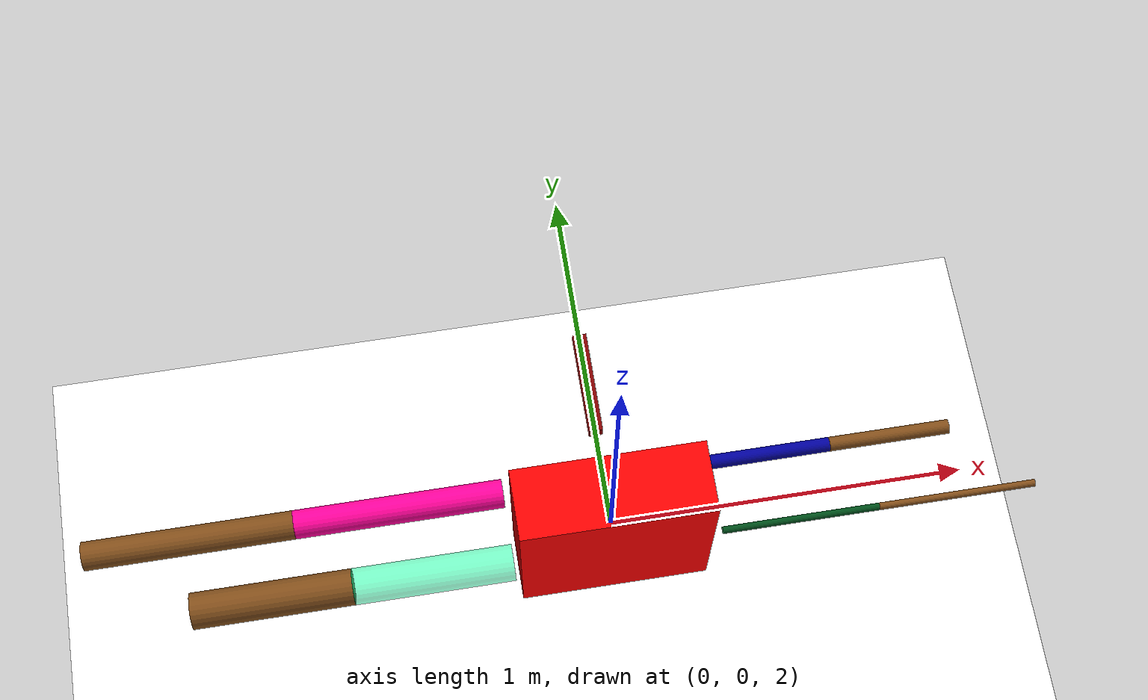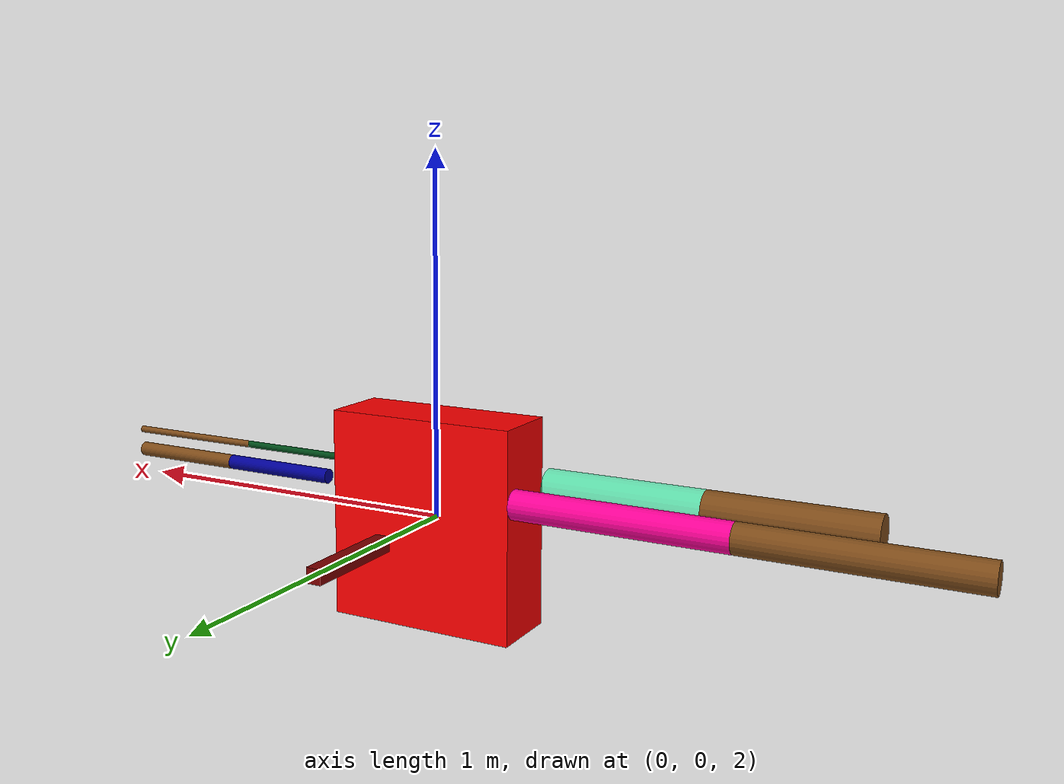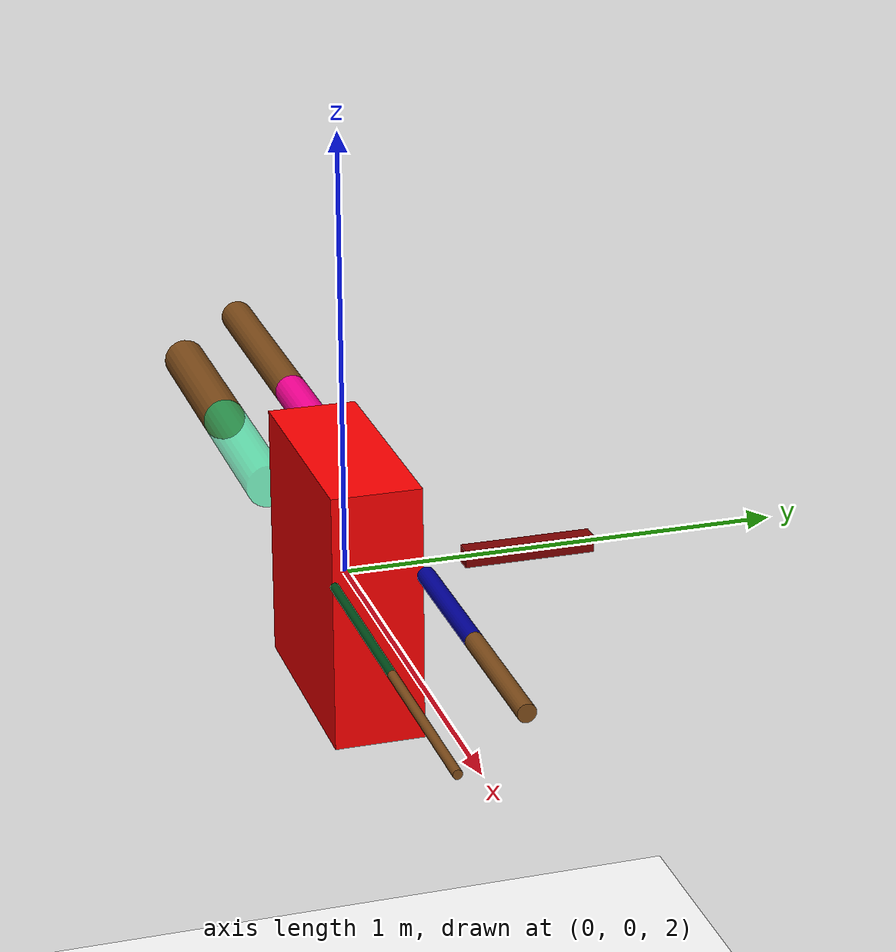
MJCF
<mujoco>
    <option gravity="0 0 -50.81" />
    <worldbody>
        <light diffuse="0.8 0.8 0.8" pos="0 0 8" dir="0 0 -1" />
        <geom type="plane" size="3 3 0.1" rgba="1 1 1 1" />

        <body name="main_body" pos="0 0 2">
            <joint name="main_body" type="free" />
            <geom type="box" size="0.29 0.27 0.1" rgba="1 0 0 1" euler="90 0 90" mass="40" />

            <body name="leg1" pos="-0.51 -0.1 0.1" euler="0 90 0">
                <joint name="leg1-1" pos="0 0 0.22" type="hinge" axis="0 1 0" range="-45 45" />
                <geom type="cylinder" size="0.05 0.22" rgba="0 1 0.6 0.5" mass="10" />
                <body name="shank1" pos="0 0 -0.44">
                    <joint name="leg1-2" pos="0 0 0.22" type="hinge" axis="0 1 0" range="-90 -70" />
                    <geom type="cylinder" size="0.05 0.22" rgba="0.5 0.3 0.1 1" mass="30" />
                </body>
            </body>

            <body name="leg2" pos="-0.58 0.1 0.1" euler="0 90 0">
                <joint name="leg2-1" pos="0 0 0.29" type="hinge" axis="0 1 0" range="-45 45" />
                <geom type="cylinder" size="0.04 0.29" rgba="1 0 0.6 1" mass="10" />
                <body name="shank2" pos="0 0 -0.58">
                    <joint name="leg2-2" pos="0 0 0.29" type="hinge" axis="0 1 0" range="-90 -70" />
                    <geom type="cylinder" size="0.04 0.29" rgba="0.5 0.3 0.1 1" mass="30" />
                </body>
            </body>

            <body name="leg3" pos="0.51 -0.1 0.1" euler="0 -90 0">
                <joint name="leg3-1" pos="0 0 0.22" type="hinge" axis="0 1 0" range="-45 45" />
                <geom type="cylinder" size="0.01 0.22" rgba="0 0.3 0.1 1" mass="10" />
                <body name="shank3" pos="0 0 -0.44">
                    <joint name="leg3-2" pos="0 0 0.22" type="hinge" axis="0 1 0" range="70 90" />
                    <geom type="cylinder" size="0.01 0.22" rgba="0.5 0.3 0.1 1" mass="30" />
                </body>
            </body>

            <body name="leg4" pos="0.45999999999999996 0.1 0.1" euler="0 -90 0">
                <joint name="leg4-1" pos="0 0 0.17" type="hinge" axis="0 1 0" range="-45 45" />
                <geom type="cylinder" size="0.02 0.17" rgba="0 0 0.6 1" mass="10" />
                <body name="shank4" pos="0 0 -0.34">
                    <joint name="leg4-2" pos="0 0 0.17" type="hinge" axis="0 1 0" range="70 90" />
                    <geom type="cylinder" size="0.02 0.17" rgba="0.5 0.3 0.1 1" mass="30" />
                </body>
            </body>
        <body name="tail" pos="0 0.42000000000000004 0"><geom type="box" size="0.02 0.15 0.02" rgba="0.5 0 0 1" /><joint name="tail1" type="hinge" pos="0 -0.05 0" axis="1 0 0" range="-9.022515190687741 1.5231230774735183" /></body></body>

    </worldbody>
    <actuator>
        <motor joint="leg1-1" name="fl1j" />
        <motor joint="leg1-2" name="fl2j" />
        <motor joint="leg3-1" name="bl1j" />
        <motor joint="leg3-2" name="bl2j" />
        <motor joint="leg2-1" name="fr1j" />
        <motor joint="leg2-2" name="fr2j" />
        <motor joint="leg4-1" name="br1j" />
        <motor joint="leg4-2" name="br2j" />
    <motor joint="tail1" name="tail1j" /></actuator>
</mujoco>
